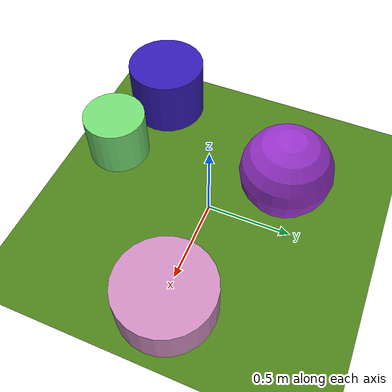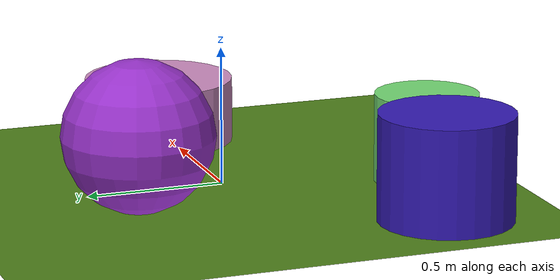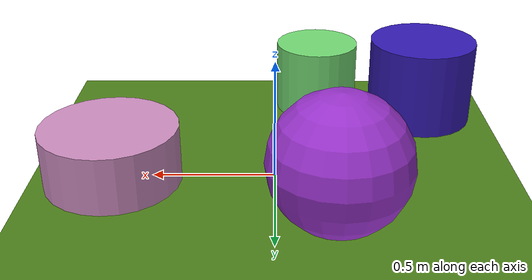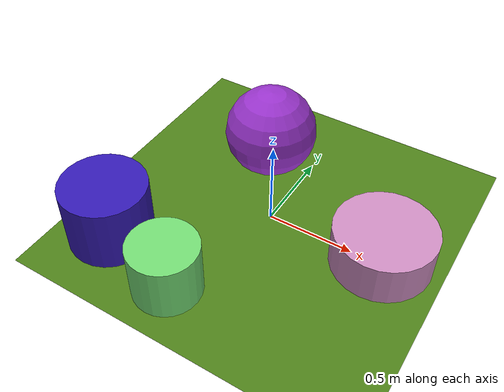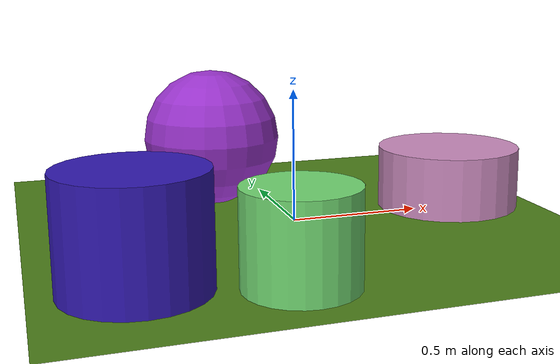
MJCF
<mujoco>
   <asset>
<texture type="skybox" builtin="gradient" rgb1="0.1 0.1 0.4" rgb2="0.3 0.7 0.4" width="256" height="256"/>
<texture name="gradient_0" builtin="gradient" rgb1="0.1 1.0 0.5" rgb2="0.8 0.7 0.4" width="200" height="200"/>
<texture name="flat_1" builtin="flat" rgb1="0.2 0.1 0.7" rgb2="0.2 0.1 0.7"  width="200" height="200"/>
<texture name="flat_2" builtin="flat" rgb1="0.6 0.2 0.8" rgb2="0.6 0.2 0.8"  width="200" height="200"/>
<texture name="checker_3" builtin="checker" type="2d" rgb1="1.0 0.1 0.7" rgb2="0.6 1.0 0.8" width="200" height="200"/><material name="gradient_0_mat" reflectance="0" texture="gradient_0" texuniform="true"/>
<material name="flat_1_mat" reflectance="0" texture="flat_1" texuniform="true"/>
<material name="flat_2_mat" reflectance="0" texture="flat_2" texuniform="true"/>
<material name="checker_3_mat" reflectance="0" texrepeat="10 10" texture="checker_3" texuniform="false" />
   </asset>

   <worldbody>
      <light diffuse=".9 .9 .9" pos="0 0 3" dir="0 0 -1"/>
     <geom type="plane" size="1 1 0.1" rgba="0.3 0.5 0.1 1"/>
<geom type="cylinder" pos="-0.2 -0.71 0.16" size="0.19 0.16 0.16" material="gradient_0_mat" />
<geom type="cylinder" pos="-0.68 -0.58 0.19" size="0.24 0.19 0.19" material="flat_1_mat" />
<geom type="sphere" pos="-0.23 0.38 0.27" size="0.27 0.27 0.27" material="flat_2_mat" />
<geom type="cylinder" pos="0.66 0.03 0.12" size="0.28 0.12 0.12" material="checker_3_mat" /><camera euler="60 0 180" fovy="60" name="camera_a" pos="0 -1.5 1"></camera>   </worldbody>
</mujoco>
